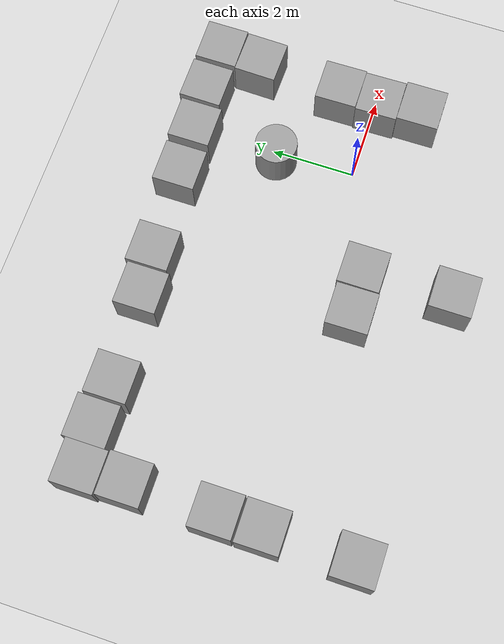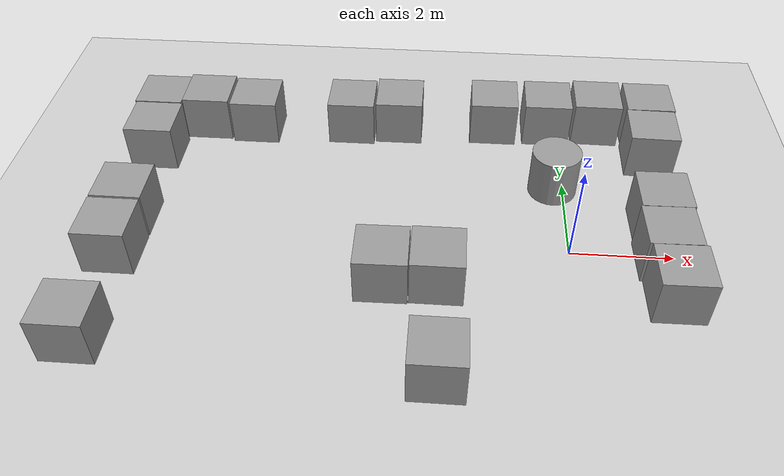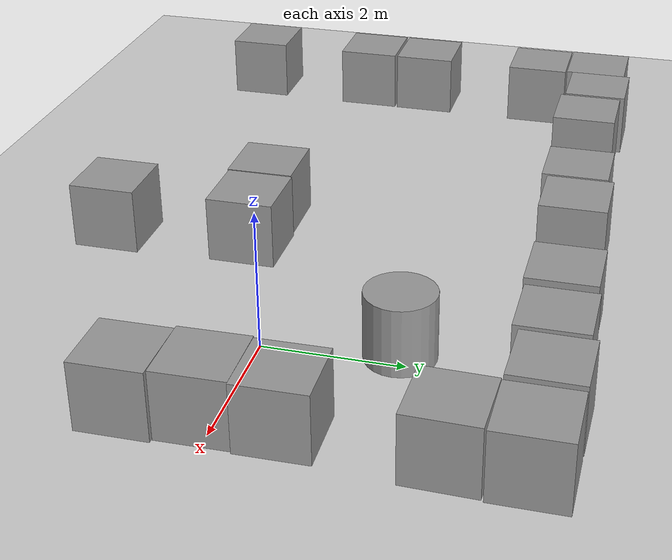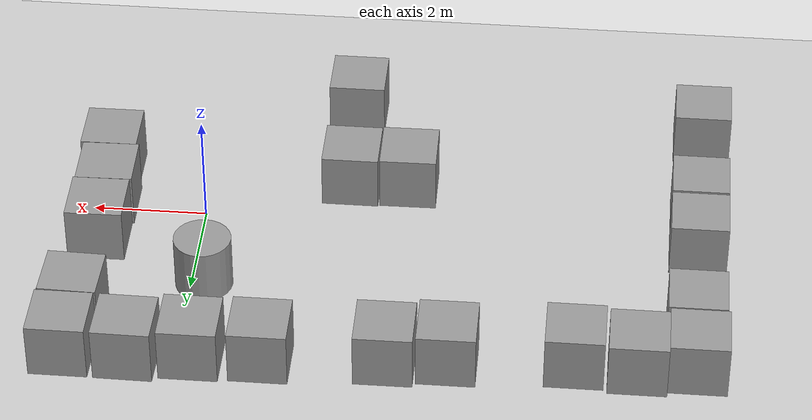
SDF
<sdf version="1.6">
 <world name="default">
  <model name="ground_plane">
   <static>1</static>
   <link name="link">
    <collision name="collision">
     <geometry><plane><normal>0 0 1</normal><size>100 100</size></plane></geometry>
     <surface>
      <contact><collide_bitmask>65535</collide_bitmask></contact>
      <friction><ode><mu>100</mu><mu2>50</mu2></ode></friction>
     </surface>
    </collision>
    <visual name="visual">
     <cast_shadows>0</cast_shadows>
     <geometry><plane><normal>0 0 1</normal><size>100 100</size></plane></geometry>
     <material>
      <script><uri>file://media/materials/scripts/gazebo.material</uri><name>Gazebo/Grey</name></script>
     </material>
    </visual>
   </link>
  </model>
  <model name="unit_box">
   <pose>-8.73208 0.394658 0.499995 1e-05 -0 -0.00012</pose>
   <link name="link">
    <inertial>
     <mass>1</mass>
     <inertia>
      <ixx>0.166667</ixx>
      <ixy>0</ixy>
      <ixz>0</ixz>
      <iyy>0.166667</iyy>
      <iyz>0</iyz>
      <izz>0.166667</izz>
     </inertia>
    </inertial>
    <collision name="collision"><geometry><box><size>1 1 1</size></box></geometry></collision>
    <visual name="visual">
     <geometry><box><size>1 1 1</size></box></geometry>
     <material>
      <script><name>Gazebo/Grey</name><uri>file://media/materials/scripts/gazebo.material</uri></script>
     </material>
    </visual>
   </link>
  </model>
  <model name="unit_box_1">
   <pose>-8.73525 -0.650646 0.499995 1e-05 -0 0</pose>
   <link name="link">
    <inertial>
     <mass>1</mass>
     <inertia>
      <ixx>0.166667</ixx>
      <ixy>0</ixy>
      <ixz>0</ixz>
      <iyy>0.166667</iyy>
      <iyz>0</iyz>
      <izz>0.166667</izz>
     </inertia>
    </inertial>
    <collision name="collision"><geometry><box><size>1 1 1</size></box></geometry></collision>
    <visual name="visual">
     <geometry><box><size>1 1 1</size></box></geometry>
     <material>
      <script><name>Gazebo/Grey</name><uri>file://media/materials/scripts/gazebo.material</uri></script>
     </material>
    </visual>
   </link>
  </model>
  <model name="unit_box_4">
   <pose>-2.45366 -3.10243 0.499995 0 1e-05 0</pose>
   <link name="link">
    <inertial>
     <mass>1</mass>
     <inertia>
      <ixx>0.166667</ixx>
      <ixy>0</ixy>
      <ixz>0</ixz>
      <iyy>0.166667</iyy>
      <iyz>0</iyz>
      <izz>0.166667</izz>
     </inertia>
    </inertial>
    <collision name="collision"><geometry><box><size>1 1 1</size></box></geometry></collision>
    <visual name="visual">
     <geometry><box><size>1 1 1</size></box></geometry>
     <material>
      <script><name>Gazebo/Grey</name><uri>file://media/materials/scripts/gazebo.material</uri></script>
     </material>
    </visual>
   </link>
  </model>
  <model name="unit_box_13">
   <pose>-8.75933 -2.74938 0.499995 1e-05 -0 0</pose>
   <link name="link">
    <inertial>
     <mass>1</mass>
     <inertia>
      <ixx>0.166667</ixx>
      <ixy>0</ixy>
      <ixz>0</ixz>
      <iyy>0.166667</iyy>
      <iyz>0</iyz>
      <izz>0.166667</izz>
     </inertia>
    </inertial>
    <collision name="collision"><geometry><box><size>1 1 1</size></box></geometry></collision>
    <visual name="visual">
     <geometry><box><size>1 1 1</size></box></geometry>
     <material>
      <script><name>Gazebo/Grey</name><uri>file://media/materials/scripts/gazebo.material</uri></script>
     </material>
    </visual>
   </link>
  </model>
  <model name="unit_box_37">
   <pose>1.75968 0.885157 0.499995 1e-05 -0 0.012187</pose>
   <link name="link">
    <inertial>
     <mass>1</mass>
     <inertia>
      <ixx>0.166667</ixx>
      <ixy>0</ixy>
      <ixz>0</ixz>
      <iyy>0.166667</iyy>
      <iyz>0</iyz>
      <izz>0.166667</izz>
     </inertia>
    </inertial>
    <collision name="collision"><geometry><box><size>1 1 1</size></box></geometry></collision>
    <visual name="visual">
     <geometry><box><size>1 1 1</size></box></geometry>
     <material>
      <script><name>Gazebo/Grey</name><uri>file://media/materials/scripts/gazebo.material</uri></script>
     </material>
    </visual>
   </link>
  </model>
  <model name="unit_box_39">
   <pose>-1.45561 3.83114 0.499995 1e-05 -0 5.9e-05</pose>
   <link name="link">
    <inertial>
     <mass>1</mass>
     <inertia>
      <ixx>0.166667</ixx>
      <ixy>0</ixy>
      <ixz>0</ixz>
      <iyy>0.166667</iyy>
      <iyz>0</iyz>
      <izz>0.166667</izz>
     </inertia>
    </inertial>
    <collision name="collision"><geometry><box><size>1 1 1</size></box></geometry></collision>
    <visual name="visual">
     <geometry><box><size>1 1 1</size></box></geometry>
     <material>
      <script><name>Gazebo/Grey</name><uri>file://media/materials/scripts/gazebo.material</uri></script>
     </material>
    </visual>
   </link>
  </model>
  <model name="unit_box_40">
   <pose>-0.290688 3.86971 0.499995 1e-05 -0 0</pose>
   <link name="link">
    <inertial>
     <mass>1</mass>
     <inertia>
      <ixx>0.166667</ixx>
      <ixy>0</ixy>
      <ixz>0</ixz>
      <iyy>0.166667</iyy>
      <iyz>0</iyz>
      <izz>0.166667</izz>
     </inertia>
    </inertial>
    <collision name="collision"><geometry><box><size>1 1 1</size></box></geometry></collision>
    <visual name="visual">
     <geometry><box><size>1 1 1</size></box></geometry>
     <material>
      <script><name>Gazebo/Grey</name><uri>file://media/materials/scripts/gazebo.material</uri></script>
     </material>
    </visual>
   </link>
  </model>
  <model name="unit_box_42">
   <pose>0.792049 3.95614 0.499995 1e-05 -0 -0.012034</pose>
   <link name="link">
    <inertial>
     <mass>1</mass>
     <inertia>
      <ixx>0.166667</ixx>
      <ixy>0</ixy>
      <ixz>0</ixz>
      <iyy>0.166667</iyy>
      <iyz>0</iyz>
      <izz>0.166667</izz>
     </inertia>
    </inertial>
    <collision name="collision"><geometry><box><size>1 1 1</size></box></geometry></collision>
    <visual name="visual">
     <geometry><box><size>1 1 1</size></box></geometry>
     <material>
      <script><name>Gazebo/Grey</name><uri>file://media/materials/scripts/gazebo.material</uri></script>
     </material>
    </visual>
   </link>
  </model>
  <model name="unit_box_43">
   <pose>1.85421 2.92949 0.499995 -1e-05 -0 -0.023604</pose>
   <link name="link">
    <inertial>
     <mass>1</mass>
     <inertia>
      <ixx>0.166667</ixx>
      <ixy>0</ixy>
      <ixz>0</ixz>
      <iyy>0.166667</iyy>
      <iyz>0</iyz>
      <izz>0.166667</izz>
     </inertia>
    </inertial>
    <collision name="collision"><geometry><box><size>1 1 1</size></box></geometry></collision>
    <visual name="visual">
     <geometry><box><size>1 1 1</size></box></geometry>
     <material>
      <script><name>Gazebo/Grey</name><uri>file://media/materials/scripts/gazebo.material</uri></script>
     </material>
    </visual>
   </link>
  </model>
  <model name="unit_box_45">
   <pose>-3.53265 3.72336 0.499995 0 1e-05 0.00487</pose>
   <link name="link">
    <inertial>
     <mass>1</mass>
     <inertia>
      <ixx>0.166667</ixx>
      <ixy>0</ixy>
      <ixz>0</ixz>
      <iyy>0.166667</iyy>
      <iyz>0</iyz>
      <izz>0.166667</izz>
     </inertia>
    </inertial>
    <collision name="collision"><geometry><box><size>1 1 1</size></box></geometry></collision>
    <visual name="visual">
     <geometry><box><size>1 1 1</size></box></geometry>
     <material>
      <script><name>Gazebo/Grey</name><uri>file://media/materials/scripts/gazebo.material</uri></script>
     </material>
    </visual>
   </link>
  </model>
  <model name="unit_box_46">
   <pose>-4.57517 3.63075 0.499995 1e-05 -0 0.00262</pose>
   <link name="link">
    <inertial>
     <mass>1</mass>
     <inertia>
      <ixx>0.166667</ixx>
      <ixy>0</ixy>
      <ixz>0</ixz>
      <iyy>0.166667</iyy>
      <iyz>0</iyz>
      <izz>0.166667</izz>
     </inertia>
    </inertial>
    <collision name="collision"><geometry><box><size>1 1 1</size></box></geometry></collision>
    <visual name="visual">
     <geometry><box><size>1 1 1</size></box></geometry>
     <material>
      <script><name>Gazebo/Grey</name><uri>file://media/materials/scripts/gazebo.material</uri></script>
     </material>
    </visual>
   </link>
  </model>
  <model name="unit_box_48">
   <pose>-6.70132 3.5177 0.499995 0 1e-05 0</pose>
   <link name="link">
    <inertial>
     <mass>1</mass>
     <inertia>
      <ixx>0.166667</ixx>
      <ixy>0</ixy>
      <ixz>0</ixz>
      <iyy>0.166667</iyy>
      <iyz>0</iyz>
      <izz>0.166667</izz>
     </inertia>
    </inertial>
    <collision name="collision"><geometry><box><size>1 1 1</size></box></geometry></collision>
    <visual name="visual">
     <geometry><box><size>1 1 1</size></box></geometry>
     <material>
      <script><name>Gazebo/Grey</name><uri>file://media/materials/scripts/gazebo.material</uri></script>
     </material>
    </visual>
   </link>
  </model>
  <model name="unit_box_49">
   <pose>-7.75877 3.58603 0.499995 1e-05 -0 0.000446</pose>
   <link name="link">
    <inertial>
     <mass>1</mass>
     <inertia>
      <ixx>0.166667</ixx>
      <ixy>0</ixy>
      <ixz>0</ixz>
      <iyy>0.166667</iyy>
      <iyz>0</iyz>
      <izz>0.166667</izz>
     </inertia>
    </inertial>
    <collision name="collision"><geometry><box><size>1 1 1</size></box></geometry></collision>
    <visual name="visual">
     <geometry><box><size>1 1 1</size></box></geometry>
     <material>
      <script><name>Gazebo/Grey</name><uri>file://media/materials/scripts/gazebo.material</uri></script>
     </material>
    </visual>
   </link>
  </model>
  <model name="unit_box_50">
   <pose>-8.75873 3.48616 0.499995 1e-05 -0 0.000432</pose>
   <link name="link">
    <inertial>
     <mass>1</mass>
     <inertia>
      <ixx>0.166667</ixx>
      <ixy>0</ixy>
      <ixz>0</ixz>
      <iyy>0.166667</iyy>
      <iyz>0</iyz>
      <izz>0.166667</izz>
     </inertia>
    </inertial>
    <collision name="collision"><geometry><box><size>1 1 1</size></box></geometry></collision>
    <visual name="visual">
     <geometry><box><size>1 1 1</size></box></geometry>
     <material>
      <script><name>Gazebo/Grey</name><uri>file://media/materials/scripts/gazebo.material</uri></script>
     </material>
    </visual>
   </link>
  </model>
  <model name="unit_box_51">
   <pose>-8.71677 2.46298 0.499995 -1e-05 0 0.000652</pose>
   <link name="link">
    <inertial>
     <mass>1</mass>
     <inertia>
      <ixx>0.166667</ixx>
      <ixy>0</ixy>
      <ixz>0</ixz>
      <iyy>0.166667</iyy>
      <iyz>0</iyz>
      <izz>0.166667</izz>
     </inertia>
    </inertial>
    <collision name="collision"><geometry><box><size>1 1 1</size></box></geometry></collision>
    <visual name="visual">
     <geometry><box><size>1 1 1</size></box></geometry>
     <material>
      <script><name>Gazebo/Grey</name><uri>file://media/materials/scripts/gazebo.material</uri></script>
     </material>
    </visual>
   </link>
  </model>
  <model name="unit_cylinder">
   <pose>-0.225331 1.86282 0.499994 -3e-06 -1e-06 -0</pose>
   <link name="link">
    <inertial>
     <mass>1</mass>
     <inertia><ixx>0.145833</ixx><ixy>0</ixy><ixz>0</ixz><iyy>0.145833</iyy><iyz>0</iyz><izz>0.125</izz></inertia>
    </inertial>
    <collision name="collision">
     <geometry><cylinder><radius>0.5</radius><length>1</length></cylinder></geometry>
    </collision>
    <visual name="visual">
     <geometry><cylinder><radius>0.5</radius><length>1</length></cylinder></geometry>
     <material>
      <script><name>Gazebo/Grey</name><uri>file://media/materials/scripts/gazebo.material</uri></script>
     </material>
    </visual>
   </link>
  </model>
  <model name="unit_box_11">
   <pose>-3.55144 -1.01545 0.499995 0 1e-05 0.011327</pose>
   <link name="link">
    <inertial>
     <mass>1</mass>
     <inertia>
      <ixx>0.166667</ixx>
      <ixy>0</ixy>
      <ixz>0</ixz>
      <iyy>0.166667</iyy>
      <iyz>0</iyz>
      <izz>0.166667</izz>
     </inertia>
    </inertial>
    <collision name="collision"><geometry><box><size>1 1 1</size></box></geometry></collision>
    <visual name="visual">
     <geometry><box><size>1 1 1</size></box></geometry>
     <material>
      <script><name>Gazebo/Grey</name><uri>file://media/materials/scripts/gazebo.material</uri></script>
     </material>
    </visual>
   </link>
  </model>
  <model name="unit_box_12">
   <pose>-2.52881 -0.984635 0.499995 0 1e-05 0</pose>
   <link name="link">
    <inertial>
     <mass>1</mass>
     <inertia>
      <ixx>0.166667</ixx>
      <ixy>0</ixy>
      <ixz>0</ixz>
      <iyy>0.166667</iyy>
      <iyz>0</iyz>
      <izz>0.166667</izz>
     </inertia>
    </inertial>
    <collision name="collision"><geometry><box><size>1 1 1</size></box></geometry></collision>
    <visual name="visual">
     <geometry><box><size>1 1 1</size></box></geometry>
     <material>
      <script><name>Gazebo/Grey</name><uri>file://media/materials/scripts/gazebo.material</uri></script>
     </material>
    </visual>
   </link>
  </model>
  <model name="unit_box_36">
   <pose>1.80822 -1.12179 0.499995 0 1e-05 0.007681</pose>
   <link name="link">
    <inertial>
     <mass>1</mass>
     <inertia>
      <ixx>0.166667</ixx>
      <ixy>0</ixy>
      <ixz>0</ixz>
      <iyy>0.166667</iyy>
      <iyz>0</iyz>
      <izz>0.166667</izz>
     </inertia>
    </inertial>
    <collision name="collision"><geometry><box><size>1 1 1</size></box></geometry></collision>
    <visual name="visual">
     <geometry><box><size>1 1 1</size></box></geometry>
     <material>
      <script><name>Gazebo/Grey</name><uri>file://media/materials/scripts/gazebo.material</uri></script>
     </material>
    </visual>
   </link>
  </model>
  <model name="unit_box_52">
   <pose>1.74259 -0.118034 0.499995 1e-05 -0 0.017177</pose>
   <link name="link">
    <inertial>
     <mass>1</mass>
     <inertia>
      <ixx>0.166667</ixx>
      <ixy>0</ixy>
      <ixz>0</ixz>
      <iyy>0.166667</iyy>
      <iyz>0</iyz>
      <izz>0.166667</izz>
     </inertia>
    </inertial>
    <collision name="collision"><geometry><box><size>1 1 1</size></box></geometry></collision>
    <visual name="visual">
     <geometry><box><size>1 1 1</size></box></geometry>
     <material>
      <script><name>Gazebo/Grey</name><uri>file://media/materials/scripts/gazebo.material</uri></script>
     </material>
    </visual>
   </link>
  </model>
  <model name="unit_box_53">
   <pose>1.89369 3.9453 0.499995 1e-05 -0 0</pose>
   <link name="link">
    <inertial>
     <mass>1</mass>
     <inertia>
      <ixx>0.166667</ixx>
      <ixy>0</ixy>
      <ixz>0</ixz>
      <iyy>0.166667</iyy>
      <iyz>0</iyz>
      <izz>0.166667</izz>
     </inertia>
    </inertial>
    <collision name="collision"><geometry><box><size>1 1 1</size></box></geometry></collision>
    <visual name="visual">
     <geometry><box><size>1 1 1</size></box></geometry>
     <material>
      <script><name>Gazebo/Grey</name><uri>file://media/materials/scripts/gazebo.material</uri></script>
     </material>
    </visual>
   </link>
  </model>
 </world>
</sdf>
